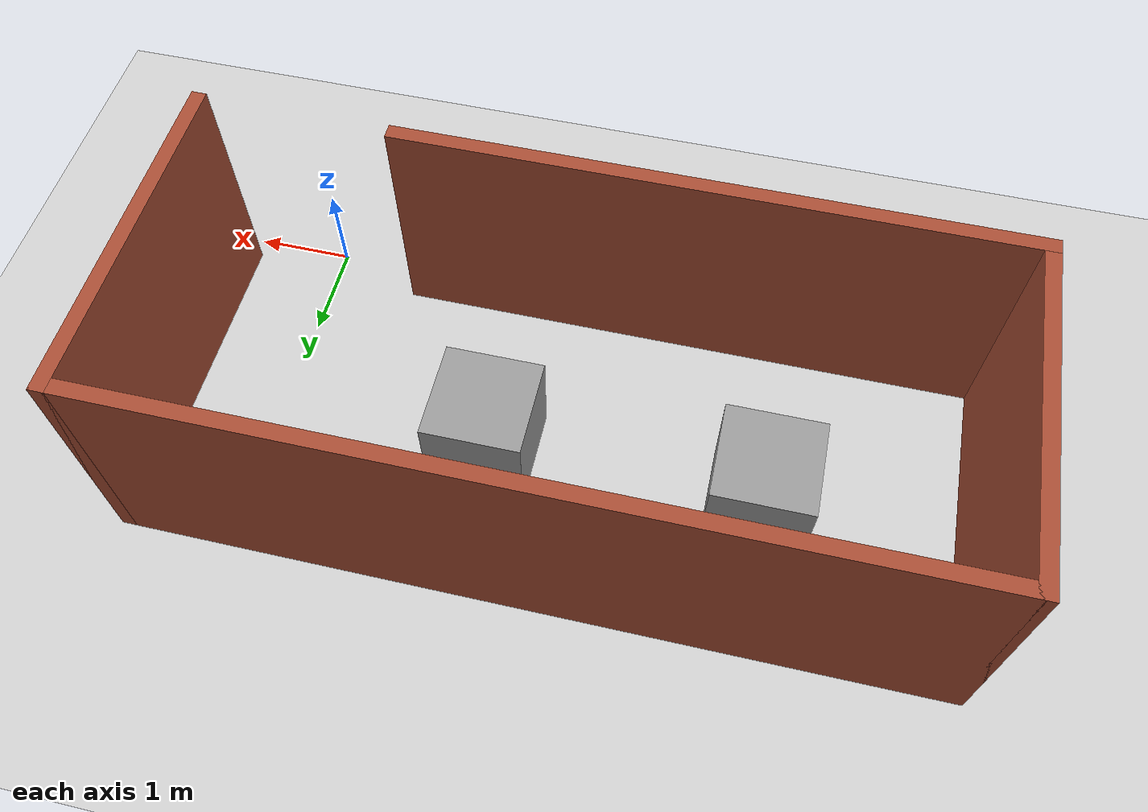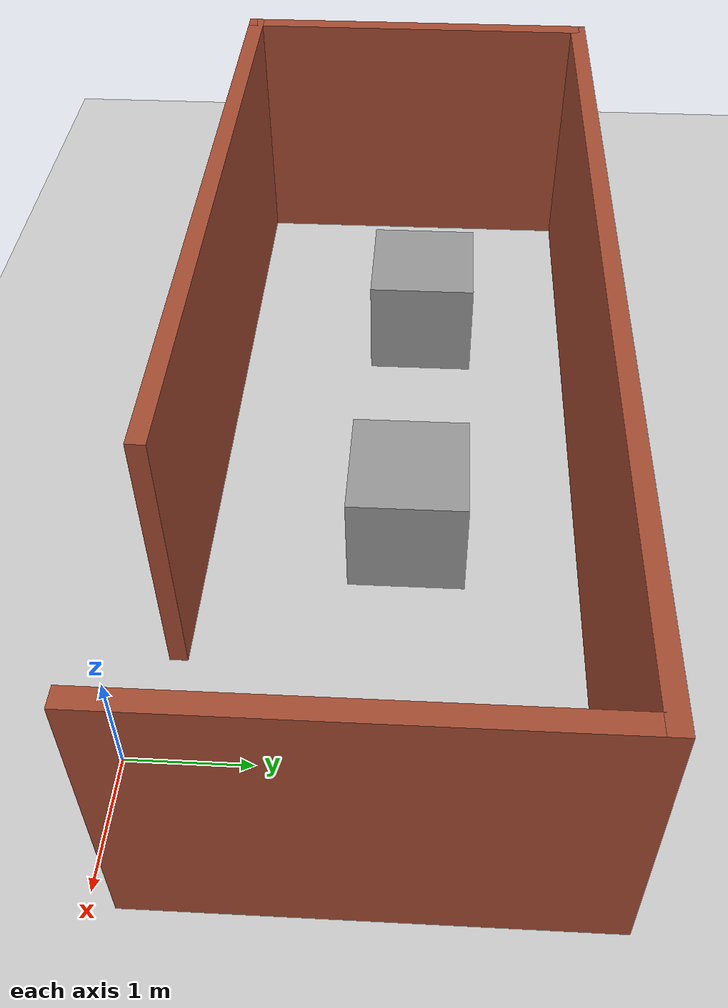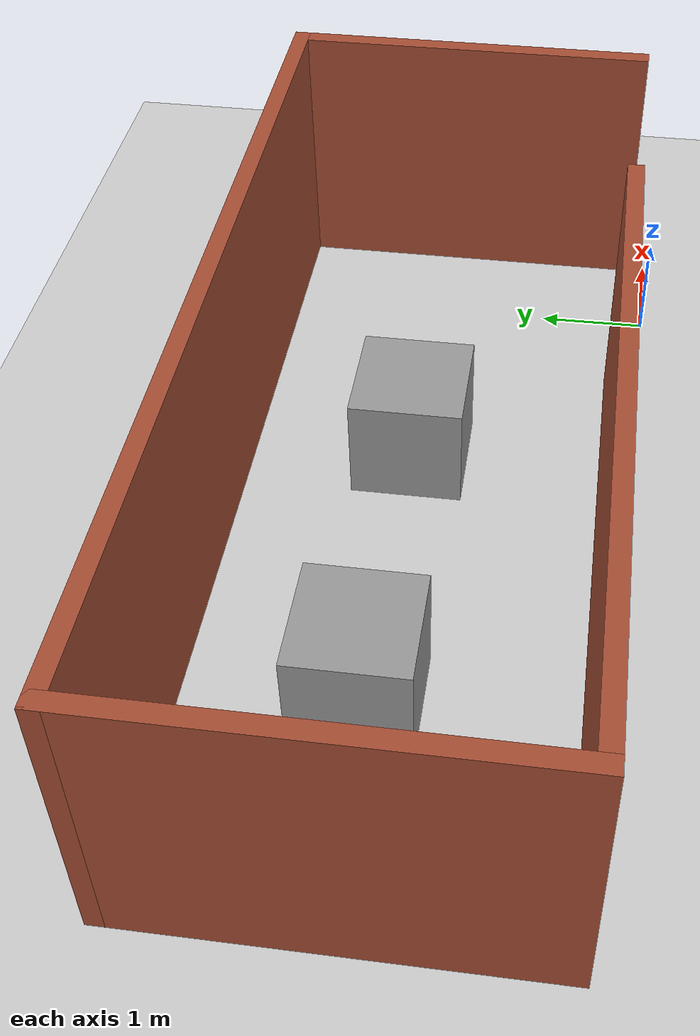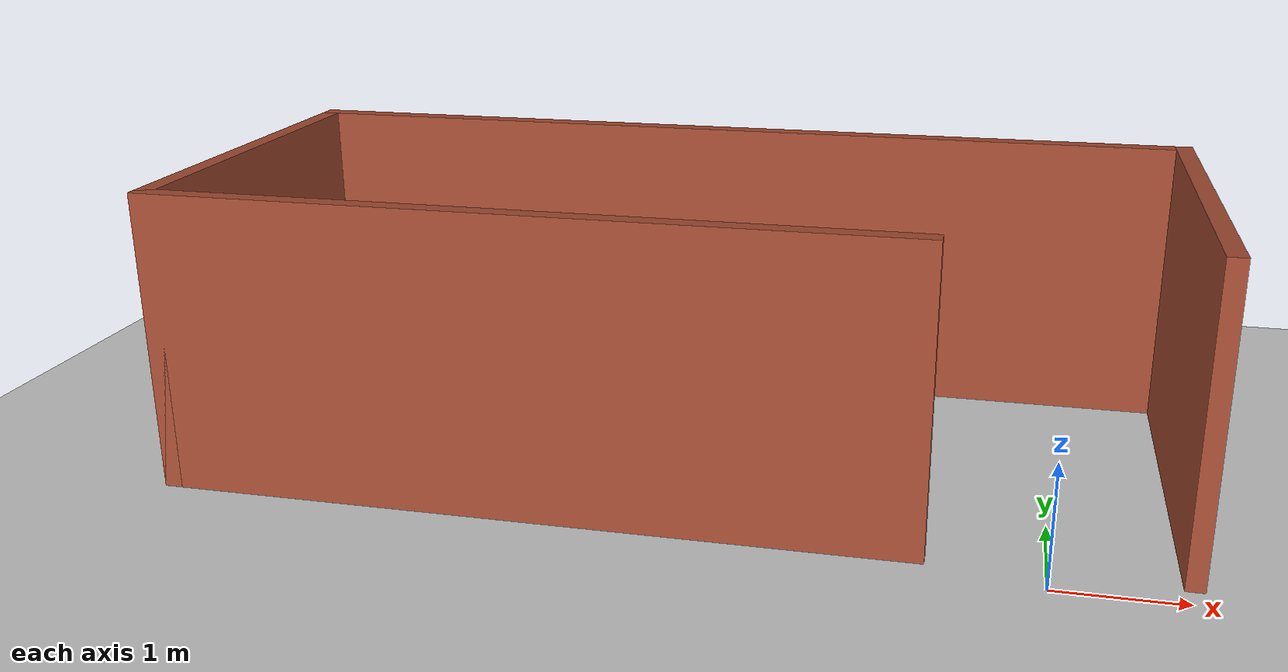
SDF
<sdf version="1.7">
 <world name="default">
  <light name="sun" type="directional">
   <pose>0 0 10 0 -0 0</pose>
   <diffuse>0.8 0.8 0.8 1</diffuse>
   <specular>0.2 0.2 0.2 1</specular>
   <attenuation>
    <range>1000</range>
    <constant>0.9</constant>
    <linear>0.01</linear>
    <quadratic>0.001</quadratic>
   </attenuation>
   <direction>-0.5 0.1 -0.9</direction>
   <spot><inner_angle>0</inner_angle><outer_angle>0</outer_angle><falloff>0</falloff></spot>
  </light>
  <model name="ground_plane">
   <static>1</static>
   <link name="link">
    <collision name="collision">
     <geometry><plane><normal>0 0 1</normal><size>100 100</size></plane></geometry>
     <surface><friction><ode><mu>100</mu><mu2>50</mu2></ode></friction></surface>
    </collision>
    <visual name="visual">
     <cast_shadows>0</cast_shadows>
     <geometry><plane><normal>0 0 1</normal><size>100 100</size></plane></geometry>
     <material>
      <script><uri>file://media/materials/scripts/gazebo.material</uri><name>Gazebo/Grey</name></script>
     </material>
    </visual>
   </link>
  </model>
  <gravity>0 0 -9.8</gravity>
  <magnetic_field>6e-06 2.3e-05 -4.2e-05</magnetic_field>
  <atmosphere type="adiabatic"/>
  <physics type="ode">
   <max_step_size>0.001</max_step_size>
   <real_time_factor>1</real_time_factor>
   <real_time_update_rate>1000</real_time_update_rate>
  </physics>
  <scene><ambient>0.4 0.4 0.4 1</ambient><background>0.7 0.7 0.7 1</background><shadows>1</shadows></scene>
  <audio><device>default</device></audio>
  <spherical_coordinates>
   <surface_model>EARTH_WGS84</surface_model>
   <latitude_deg>0</latitude_deg>
   <longitude_deg>0</longitude_deg>
   <elevation>0</elevation>
   <heading_deg>0</heading_deg>
  </spherical_coordinates>
  <model name="Untitled">
   <pose>-3.01859 2.22442 0 0 -0 0</pose>
   <link name="Wall_0">
    <collision name="Wall_0_Collision">
     <geometry><box><size>3.5 0.15 2.5</size></box></geometry>
     <pose>0 0 1.25 0 -0 0</pose>
    </collision>
    <visual name="Wall_0_Visual">
     <pose>0 0 1.25 0 -0 0</pose>
     <geometry><box><size>3.5 0.15 2.5</size></box></geometry>
     <material>
      <script><uri>file://media/materials/scripts/gazebo.material</uri><name>Gazebo/Bricks</name></script>
      <ambient>1 1 1 1</ambient>
     </material>
     <meta><layer>0</layer></meta>
    </visual>
    <pose>-4.05 -0.2825 0 0 -0 -1.5708</pose>
   </link>
   <link name="Wall_1">
    <collision name="Wall_1_Collision">
     <geometry><box><size>6.25 0.15 2.5</size></box></geometry>
     <pose>0 0 1.25 0 -0 0</pose>
    </collision>
    <visual name="Wall_1_Visual">
     <pose>0 0 1.25 0 -0 0</pose>
     <geometry><box><size>6.25 0.15 2.5</size></box></geometry>
     <material>
      <script><uri>file://media/materials/scripts/gazebo.material</uri><name>Gazebo/Bricks</name></script>
      <ambient>1 1 1 1</ambient>
     </material>
     <meta><layer>0</layer></meta>
    </visual>
    <pose>-1 -1.9575 0 0 -0 0</pose>
   </link>
   <link name="Wall_3">
    <collision name="Wall_3_Collision">
     <geometry><box><size>8.25 0.15 2.5</size></box></geometry>
     <pose>0 0 1.25 0 -0 0</pose>
    </collision>
    <visual name="Wall_3_Visual">
     <pose>0 0 1.25 0 -0 0</pose>
     <geometry><box><size>8.25 0.15 2.5</size></box></geometry>
     <material>
      <script><uri>file://media/materials/scripts/gazebo.material</uri><name>Gazebo/Bricks</name></script>
      <ambient>1 1 1 1</ambient>
     </material>
     <meta><layer>0</layer></meta>
    </visual>
    <pose>0 1.3925 0 0 -0 0</pose>
   </link>
   <link name="Wall_4">
    <collision name="Wall_4_Collision">
     <geometry><box><size>3.5 0.15 2.5</size></box></geometry>
     <pose>0 0 1.25 0 -0 0</pose>
    </collision>
    <visual name="Wall_4_Visual">
     <pose>0 0 1.25 0 -0 0</pose>
     <geometry><box><size>3.5 0.15 2.5</size></box></geometry>
     <material>
      <script><uri>file://media/materials/scripts/gazebo.material</uri><name>Gazebo/Bricks</name></script>
      <ambient>1 1 1 1</ambient>
     </material>
     <meta><layer>0</layer></meta>
    </visual>
    <pose>4.05 -0.2825 0 0 -0 -1.5708</pose>
   </link>
   <static>1</static>
  </model>
  <model name="unit_box">
   <pose>-2.22314 2.06739 0.499995 0 1e-05 0</pose>
   <link name="link">
    <inertial>
     <mass>1</mass>
     <inertia>
      <ixx>0.166667</ixx>
      <ixy>0</ixy>
      <ixz>0</ixz>
      <iyy>0.166667</iyy>
      <iyz>0</iyz>
      <izz>0.166667</izz>
     </inertia>
    </inertial>
    <collision name="collision"><geometry><box><size>1 1 1</size></box></geometry></collision>
    <visual name="visual">
     <geometry><box><size>1 1 1</size></box></geometry>
     <material>
      <script><name>Gazebo/Grey</name><uri>file://media/materials/scripts/gazebo.material</uri></script>
     </material>
    </visual>
   </link>
  </model>
  <model name="unit_box_0">
   <pose>-5.01882 2.10464 0.5 0 -0 0</pose>
   <link name="link">
    <inertial>
     <mass>1</mass>
     <inertia>
      <ixx>0.166667</ixx>
      <ixy>0</ixy>
      <ixz>0</ixz>
      <iyy>0.166667</iyy>
      <iyz>0</iyz>
      <izz>0.166667</izz>
     </inertia>
    </inertial>
    <collision name="collision"><geometry><box><size>1 1 1</size></box></geometry></collision>
    <visual name="visual">
     <geometry><box><size>1 1 1</size></box></geometry>
     <material>
      <script><name>Gazebo/Grey</name><uri>file://media/materials/scripts/gazebo.material</uri></script>
     </material>
    </visual>
   </link>
  </model>
 </world>
</sdf>
